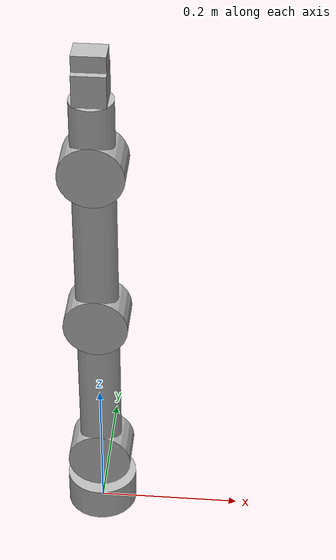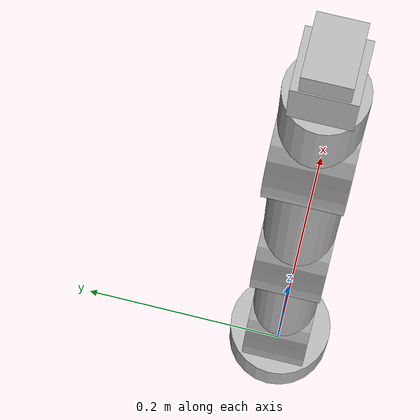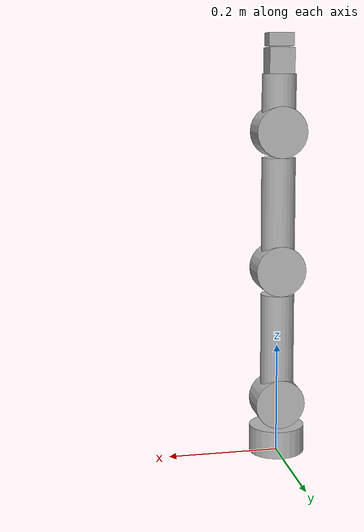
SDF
<?xml version='1.0'?>
<sdf version='1.6'>
  <model name='poke_arm'>
    <link name='poke_base_link'>
      <pose frame=''>0 0 0 0 -0 0</pose>
      <inertial>
        <pose frame=''>0 0 0.025 0 -0 0</pose>
        <mass>1</mass>
        <inertia>
          <ixx>0.00083333</ixx>
          <ixy>0</ixy>
          <ixz>0</ixz>
          <iyy>0.00083333</iyy>
          <iyz>0</iyz>
          <izz>0.00125</izz>
        </inertia>
      </inertial>
      <self_collide>0</self_collide>
      <enable_wind>0</enable_wind>
      <kinematic>0</kinematic>
      <gravity>1</gravity>
      <visual name='poke_base_link_fixed_joint_lump__baseMount_link_visual'>
        <pose frame=''>0 0 0.025 0 -0 0</pose>
        <geometry>
          <cylinder>
            <length>0.05</length>
            <radius>0.05</radius>
          </cylinder>
        </geometry>
        <material>
          <shader type='pixel'>
            <normal_map>__default__</normal_map>
          </shader>
        </material>
        <transparency>0</transparency>
        <cast_shadows>1</cast_shadows>
      </visual>
      <collision name='poke_base_link_fixed_joint_lump__baseMount_link_collision'>
        <laser_retro>0</laser_retro>
        <max_contacts>10</max_contacts>
        <pose frame=''>0 0 0.025 0 -0 0</pose>
        <geometry>
          <cylinder>
            <radius>0.05</radius>
            <length>0.05</length>
          </cylinder>
        </geometry>
        <surface>
          <friction>
            <ode>
              <mu>1</mu>
              <mu2>1</mu2>
              <fdir1>0 0 0</fdir1>
              <slip1>0</slip1>
              <slip2>0</slip2>
            </ode>
            <torsional>
              <coefficient>1</coefficient>
              <patch_radius>0</patch_radius>
              <surface_radius>0</surface_radius>
              <use_patch_radius>1</use_patch_radius>
              <ode>
                <slip>0</slip>
              </ode>
            </torsional>
          </friction>
          <bounce>
            <restitution_coefficient>0</restitution_coefficient>
            <threshold>1e+06</threshold>
          </bounce>
          <contact>
            <collide_without_contact>0</collide_without_contact>
            <collide_without_contact_bitmask>1</collide_without_contact_bitmask>
            <collide_bitmask>1</collide_bitmask>
            <ode>
              <soft_cfm>0</soft_cfm>
              <soft_erp>0.2</soft_erp>
              <kp>1e+13</kp>
              <kd>1</kd>
              <max_vel>0.01</max_vel>
              <min_depth>0</min_depth>
            </ode>
            <bullet>
              <split_impulse>1</split_impulse>
              <split_impulse_penetration_threshold>-0.01</split_impulse_penetration_threshold>
              <soft_cfm>0</soft_cfm>
              <soft_erp>0.2</soft_erp>
              <kp>1e+13</kp>
              <kd>1</kd>
            </bullet>
          </contact>
        </surface>
      </collision>
    </link>
    <link name='p0_link'>
      <pose frame=''>-0 0 0.095 0 -0 0</pose>
      <inertial>
        <pose frame=''>0 0 0.1 0 -0 0</pose>
        <mass>0.01</mass>
        <inertia>
          <ixx>0.0001</ixx>
          <ixy>0</ixy>
          <ixz>0</ixz>
          <iyy>0.0001</iyy>
          <iyz>0</iyz>
          <izz>0.0001</izz>
        </inertia>
      </inertial>
      <self_collide>0</self_collide>
      <enable_wind>0</enable_wind>
      <kinematic>0</kinematic>
      <visual name='p0_link_fixed_joint_lump__p0_joint_v_visual'>
        <pose frame=''>0 0 0 1.57079 -0 0</pose>
        <geometry>
          <cylinder>
            <length>0.06</length>
            <radius>0.045</radius>
          </cylinder>
        </geometry>
        <material>
          <shader type='pixel'/>
        </material>
        <transparency>0</transparency>
        <cast_shadows>1</cast_shadows>
      </visual>
      <visual name='p0_link_fixed_joint_lump__p0_segmentL_v_visual_1'>
        <pose frame=''>0 0 0.1 0 -0 0</pose>
        <geometry>
          <cylinder>
            <length>0.2</length>
            <radius>0.03</radius>
          </cylinder>
        </geometry>
        <material>
          <shader type='pixel'/>
        </material>
        <transparency>0</transparency>
        <cast_shadows>1</cast_shadows>
      </visual>
      <collision name='p0_link_fixed_joint_lump__p0_joint_c_collision'>
        <laser_retro>0</laser_retro>
        <max_contacts>10</max_contacts>
        <pose frame=''>0 0 0 1.57079 -0 0</pose>
        <geometry>
          <cylinder>
            <radius>0.045</radius>
            <length>0.06</length>
          </cylinder>
        </geometry>
        <surface>
          <friction>
            <ode>
              <mu>1</mu>
              <mu2>1</mu2>
              <fdir1>0 0 0</fdir1>
              <slip1>0</slip1>
              <slip2>0</slip2>
            </ode>
            <torsional>
              <coefficient>1</coefficient>
              <patch_radius>0</patch_radius>
              <surface_radius>0</surface_radius>
              <use_patch_radius>1</use_patch_radius>
              <ode>
                <slip>0</slip>
              </ode>
            </torsional>
          </friction>
          <bounce>
            <restitution_coefficient>0</restitution_coefficient>
            <threshold>1e+06</threshold>
          </bounce>
          <contact>
            <collide_without_contact>0</collide_without_contact>
            <collide_without_contact_bitmask>1</collide_without_contact_bitmask>
            <collide_bitmask>1</collide_bitmask>
            <ode>
              <soft_cfm>0</soft_cfm>
              <soft_erp>0.2</soft_erp>
              <kp>1e+13</kp>
              <kd>1</kd>
              <max_vel>0.01</max_vel>
              <min_depth>0</min_depth>
            </ode>
            <bullet>
              <split_impulse>1</split_impulse>
              <split_impulse_penetration_threshold>-0.01</split_impulse_penetration_threshold>
              <soft_cfm>0</soft_cfm>
              <soft_erp>0.2</soft_erp>
              <kp>1e+13</kp>
              <kd>1</kd>
            </bullet>
          </contact>
        </surface>
      </collision>
      <collision name='p0_link_fixed_joint_lump__p0_segmentL_c_collision_1'>
        <laser_retro>0</laser_retro>
        <max_contacts>10</max_contacts>
        <pose frame=''>0 0 0.1 0 -0 0</pose>
        <geometry>
          <cylinder>
            <radius>0.03</radius>
            <length>0.2</length>
          </cylinder>
        </geometry>
        <surface>
          <friction>
            <ode>
              <mu>1</mu>
              <mu2>1</mu2>
              <fdir1>0 0 0</fdir1>
              <slip1>0</slip1>
              <slip2>0</slip2>
            </ode>
            <torsional>
              <coefficient>1</coefficient>
              <patch_radius>0</patch_radius>
              <surface_radius>0</surface_radius>
              <use_patch_radius>1</use_patch_radius>
              <ode>
                <slip>0</slip>
              </ode>
            </torsional>
          </friction>
          <bounce>
            <restitution_coefficient>0</restitution_coefficient>
            <threshold>1e+06</threshold>
          </bounce>
          <contact>
            <collide_without_contact>0</collide_without_contact>
            <collide_without_contact_bitmask>1</collide_without_contact_bitmask>
            <collide_bitmask>1</collide_bitmask>
            <ode>
              <soft_cfm>0</soft_cfm>
              <soft_erp>0.2</soft_erp>
              <kp>1e+13</kp>
              <kd>1</kd>
              <max_vel>0.01</max_vel>
              <min_depth>0</min_depth>
            </ode>
            <bullet>
              <split_impulse>1</split_impulse>
              <split_impulse_penetration_threshold>-0.01</split_impulse_penetration_threshold>
              <soft_cfm>0</soft_cfm>
              <soft_erp>0.2</soft_erp>
              <kp>1e+13</kp>
              <kd>1</kd>
            </bullet>
          </contact>
        </surface>
      </collision>
    </link>
    <link name='p1_link'>
      <pose frame=''>-0 -0 0.34 0 -0 0</pose>
      <inertial>
        <pose frame=''>0 0 0.1 0 -0 0</pose>
        <mass>0.01</mass>
        <inertia>
          <ixx>0.0001</ixx>
          <ixy>0</ixy>
          <ixz>0</ixz>
          <iyy>0.0001</iyy>
          <iyz>0</iyz>
          <izz>0.0001</izz>
        </inertia>
      </inertial>
      <self_collide>0</self_collide>
      <enable_wind>0</enable_wind>
      <kinematic>0</kinematic>
      <visual name='p1_link_fixed_joint_lump__p1_joint_v_visual'>
        <pose frame=''>0 0 0 1.57079 -0 0</pose>
        <geometry>
          <cylinder>
            <length>0.06</length>
            <radius>0.045</radius>
          </cylinder>
        </geometry>
        <material>
          <shader type='pixel'/>
        </material>
        <transparency>0</transparency>
        <cast_shadows>1</cast_shadows>
      </visual>
      <visual name='p1_link_fixed_joint_lump__p1_segmentL_v_visual_1'>
        <pose frame=''>0 0 0.1 0 -0 0</pose>
        <geometry>
          <cylinder>
            <length>0.2</length>
            <radius>0.03</radius>
          </cylinder>
        </geometry>
        <material>
          <shader type='pixel'/>
        </material>
        <transparency>0</transparency>
        <cast_shadows>1</cast_shadows>
      </visual>
      <collision name='p1_link_fixed_joint_lump__p1_joint_c_collision'>
        <laser_retro>0</laser_retro>
        <max_contacts>10</max_contacts>
        <pose frame=''>0 0 0 1.57079 -0 0</pose>
        <geometry>
          <cylinder>
            <radius>0.045</radius>
            <length>0.06</length>
          </cylinder>
        </geometry>
        <surface>
          <friction>
            <ode>
              <mu>1</mu>
              <mu2>1</mu2>
              <fdir1>0 0 0</fdir1>
              <slip1>0</slip1>
              <slip2>0</slip2>
            </ode>
            <torsional>
              <coefficient>1</coefficient>
              <patch_radius>0</patch_radius>
              <surface_radius>0</surface_radius>
              <use_patch_radius>1</use_patch_radius>
              <ode>
                <slip>0</slip>
              </ode>
            </torsional>
          </friction>
          <bounce>
            <restitution_coefficient>0</restitution_coefficient>
            <threshold>1e+06</threshold>
          </bounce>
          <contact>
            <collide_without_contact>0</collide_without_contact>
            <collide_without_contact_bitmask>1</collide_without_contact_bitmask>
            <collide_bitmask>1</collide_bitmask>
            <ode>
              <soft_cfm>0</soft_cfm>
              <soft_erp>0.2</soft_erp>
              <kp>1e+13</kp>
              <kd>1</kd>
              <max_vel>0.01</max_vel>
              <min_depth>0</min_depth>
            </ode>
            <bullet>
              <split_impulse>1</split_impulse>
              <split_impulse_penetration_threshold>-0.01</split_impulse_penetration_threshold>
              <soft_cfm>0</soft_cfm>
              <soft_erp>0.2</soft_erp>
              <kp>1e+13</kp>
              <kd>1</kd>
            </bullet>
          </contact>
        </surface>
      </collision>
      <collision name='p1_link_fixed_joint_lump__p1_segmentL_c_collision_1'>
        <laser_retro>0</laser_retro>
        <max_contacts>10</max_contacts>
        <pose frame=''>0 0 0.1 0 -0 0</pose>
        <geometry>
          <cylinder>
            <radius>0.03</radius>
            <length>0.2</length>
          </cylinder>
        </geometry>
        <surface>
          <friction>
            <ode>
              <mu>1</mu>
              <mu2>1</mu2>
              <fdir1>0 0 0</fdir1>
              <slip1>0</slip1>
              <slip2>0</slip2>
            </ode>
            <torsional>
              <coefficient>1</coefficient>
              <patch_radius>0</patch_radius>
              <surface_radius>0</surface_radius>
              <use_patch_radius>1</use_patch_radius>
              <ode>
                <slip>0</slip>
              </ode>
            </torsional>
          </friction>
          <bounce>
            <restitution_coefficient>0</restitution_coefficient>
            <threshold>1e+06</threshold>
          </bounce>
          <contact>
            <collide_without_contact>0</collide_without_contact>
            <collide_without_contact_bitmask>1</collide_without_contact_bitmask>
            <collide_bitmask>1</collide_bitmask>
            <ode>
              <soft_cfm>0</soft_cfm>
              <soft_erp>0.2</soft_erp>
              <kp>1e+13</kp>
              <kd>1</kd>
              <max_vel>0.01</max_vel>
              <min_depth>0</min_depth>
            </ode>
            <bullet>
              <split_impulse>1</split_impulse>
              <split_impulse_penetration_threshold>-0.01</split_impulse_penetration_threshold>
              <soft_cfm>0</soft_cfm>
              <soft_erp>0.2</soft_erp>
              <kp>1e+13</kp>
              <kd>1</kd>
            </bullet>
          </contact>
        </surface>
      </collision>
    </link>
    <link name='p2_link'>
      <pose frame=''>-0 0 0.585 0 -0 0</pose>
      <inertial>
        <pose frame=''>0 0 0.05 0 -0 0</pose>
        <mass>0.01</mass>
        <inertia>
          <ixx>0.0001</ixx>
          <ixy>0</ixy>
          <ixz>0</ixz>
          <iyy>0.0001</iyy>
          <iyz>0</iyz>
          <izz>0.0001</izz>
        </inertia>
      </inertial>
      <self_collide>0</self_collide>
      <enable_wind>0</enable_wind>
      <kinematic>0</kinematic>
      <visual name='p2_link_fixed_joint_lump__p2_joint_v_visual'>
        <pose frame=''>0 0 0 1.57079 -0 0</pose>
        <geometry>
          <cylinder>
            <length>0.06</length>
            <radius>0.045</radius>
          </cylinder>
        </geometry>
        <material>
          <shader type='pixel'/>
        </material>
        <transparency>0</transparency>
        <cast_shadows>1</cast_shadows>
      </visual>
      <visual name='p2_link_fixed_joint_lump__p2_segmentS_v_visual_1'>
        <pose frame=''>0 0 0.05 0 -0 0</pose>
        <geometry>
          <cylinder>
            <length>0.1</length>
            <radius>0.03</radius>
          </cylinder>
        </geometry>
        <material>
          <shader type='pixel'/>
        </material>
        <transparency>0</transparency>
        <cast_shadows>1</cast_shadows>
      </visual>
      <collision name='p2_link_fixed_joint_lump__p2_joint_c_collision'>
        <laser_retro>0</laser_retro>
        <max_contacts>10</max_contacts>
        <pose frame=''>0 0 0 1.57079 -0 0</pose>
        <geometry>
          <cylinder>
            <radius>0.045</radius>
            <length>0.06</length>
          </cylinder>
        </geometry>
        <surface>
          <friction>
            <ode>
              <mu>1</mu>
              <mu2>1</mu2>
              <fdir1>0 0 0</fdir1>
              <slip1>0</slip1>
              <slip2>0</slip2>
            </ode>
            <torsional>
              <coefficient>1</coefficient>
              <patch_radius>0</patch_radius>
              <surface_radius>0</surface_radius>
              <use_patch_radius>1</use_patch_radius>
              <ode>
                <slip>0</slip>
              </ode>
            </torsional>
          </friction>
          <bounce>
            <restitution_coefficient>0</restitution_coefficient>
            <threshold>1e+06</threshold>
          </bounce>
          <contact>
            <collide_without_contact>0</collide_without_contact>
            <collide_without_contact_bitmask>1</collide_without_contact_bitmask>
            <collide_bitmask>1</collide_bitmask>
            <ode>
              <soft_cfm>0</soft_cfm>
              <soft_erp>0.2</soft_erp>
              <kp>1e+13</kp>
              <kd>1</kd>
              <max_vel>0.01</max_vel>
              <min_depth>0</min_depth>
            </ode>
            <bullet>
              <split_impulse>1</split_impulse>
              <split_impulse_penetration_threshold>-0.01</split_impulse_penetration_threshold>
              <soft_cfm>0</soft_cfm>
              <soft_erp>0.2</soft_erp>
              <kp>1e+13</kp>
              <kd>1</kd>
            </bullet>
          </contact>
        </surface>
      </collision>
      <collision name='p2_link_fixed_joint_lump__p2_segmentS_c_collision_1'>
        <laser_retro>0</laser_retro>
        <max_contacts>10</max_contacts>
        <pose frame=''>0 0 0.05 0 -0 0</pose>
        <geometry>
          <cylinder>
            <radius>0.03</radius>
            <length>0.1</length>
          </cylinder>
        </geometry>
        <surface>
          <friction>
            <ode>
              <mu>1</mu>
              <mu2>1</mu2>
              <fdir1>0 0 0</fdir1>
              <slip1>0</slip1>
              <slip2>0</slip2>
            </ode>
            <torsional>
              <coefficient>1</coefficient>
              <patch_radius>0</patch_radius>
              <surface_radius>0</surface_radius>
              <use_patch_radius>1</use_patch_radius>
              <ode>
                <slip>0</slip>
              </ode>
            </torsional>
          </friction>
          <bounce>
            <restitution_coefficient>0</restitution_coefficient>
            <threshold>1e+06</threshold>
          </bounce>
          <contact>
            <collide_without_contact>0</collide_without_contact>
            <collide_without_contact_bitmask>1</collide_without_contact_bitmask>
            <collide_bitmask>1</collide_bitmask>
            <ode>
              <soft_cfm>0</soft_cfm>
              <soft_erp>0.2</soft_erp>
              <kp>1e+13</kp>
              <kd>1</kd>
              <max_vel>0.01</max_vel>
              <min_depth>0</min_depth>
            </ode>
            <bullet>
              <split_impulse>1</split_impulse>
              <split_impulse_penetration_threshold>-0.01</split_impulse_penetration_threshold>
              <soft_cfm>0</soft_cfm>
              <soft_erp>0.2</soft_erp>
              <kp>1e+13</kp>
              <kd>1</kd>
            </bullet>
          </contact>
        </surface>
      </collision>
    </link>
    <link name='p3_link'>
      <pose frame=''>-0 0 0.7075 0 -0 0</pose>
      <inertial>
        <pose frame=''>0 0 0.018 0 -0 0</pose>
        <mass>0.021</mass>
        <inertia>
          <ixx>7.09e-06</ixx>
          <ixy>0</ixy>
          <ixz>0</ixz>
          <iyy>7.09e-06</iyy>
          <iyz>0</iyz>
          <izz>7.09e-06</izz>
        </inertia>
      </inertial>
      <gravity>1</gravity>
      <velocity_decay/>
      <self_collide>0</self_collide>
      <enable_wind>0</enable_wind>
      <kinematic>0</kinematic>
      <visual name='p3_link_fixed_joint_lump__p3_cSeg_v_visual'>
        <pose frame=''>0 0 0 0 -0 0</pose>
        <geometry>
          <box>
            <size>0.045 0.045 0.045</size>
          </box>
        </geometry>
        <transparency>0</transparency>
        <cast_shadows>1</cast_shadows>
        <material>
          <shader type='pixel'/>
        </material>
      </visual>
      <visual name='p3_link_fixed_joint_lump__cameraB_cam_visual_1'>
        <pose frame=''>0 0 0.036 3.14159 -1.57079 3.14159</pose>
        <geometry>
          <box>
            <size>0.0225 0.03375 0.045</size>
          </box>
        </geometry>
        <transparency>0</transparency>
        <cast_shadows>1</cast_shadows>
        <material>
          <shader type='pixel'/>
        </material>
      </visual>
      <collision name='p3_link_fixed_joint_lump__p3_cSeg_c_collision'>
        <laser_retro>0</laser_retro>
        <max_contacts>10</max_contacts>
        <pose frame=''>0 0 0 0 -0 0</pose>
        <geometry>
          <box>
            <size>0.045 0.045 0.045</size>
          </box>
        </geometry>
        <surface>
          <friction>
            <ode>
              <mu>1</mu>
              <mu2>1</mu2>
              <fdir1>0 0 0</fdir1>
              <slip1>0</slip1>
              <slip2>0</slip2>
            </ode>
            <torsional>
              <coefficient>1</coefficient>
              <patch_radius>0</patch_radius>
              <surface_radius>0</surface_radius>
              <use_patch_radius>1</use_patch_radius>
              <ode>
                <slip>0</slip>
              </ode>
            </torsional>
          </friction>
          <bounce>
            <restitution_coefficient>0</restitution_coefficient>
            <threshold>1e+06</threshold>
          </bounce>
          <contact>
            <collide_without_contact>0</collide_without_contact>
            <collide_without_contact_bitmask>1</collide_without_contact_bitmask>
            <collide_bitmask>1</collide_bitmask>
            <ode>
              <soft_cfm>0</soft_cfm>
              <soft_erp>0.2</soft_erp>
              <kp>1e+13</kp>
              <kd>1</kd>
              <max_vel>0.01</max_vel>
              <min_depth>0</min_depth>
            </ode>
            <bullet>
              <split_impulse>1</split_impulse>
              <split_impulse_penetration_threshold>-0.01</split_impulse_penetration_threshold>
              <soft_cfm>0</soft_cfm>
              <soft_erp>0.2</soft_erp>
              <kp>1e+13</kp>
              <kd>1</kd>
            </bullet>
          </contact>
        </surface>
      </collision>
      <collision name='p3_link_fixed_joint_lump__cameraB_cam_collision_1'>
        <laser_retro>0</laser_retro>
        <max_contacts>10</max_contacts>
        <pose frame=''>0 0 0.036 3.14159 -1.57079 3.14159</pose>
        <geometry>
          <box>
            <size>0.0225 0.03375 0.045</size>
          </box>
        </geometry>
        <surface>
          <friction>
            <ode>
              <mu>1</mu>
              <mu2>1</mu2>
              <fdir1>0 0 0</fdir1>
              <slip1>0</slip1>
              <slip2>0</slip2>
            </ode>
            <torsional>
              <coefficient>1</coefficient>
              <patch_radius>0</patch_radius>
              <surface_radius>0</surface_radius>
              <use_patch_radius>1</use_patch_radius>
              <ode>
                <slip>0</slip>
              </ode>
            </torsional>
          </friction>
          <bounce>
            <restitution_coefficient>0</restitution_coefficient>
            <threshold>1e+06</threshold>
          </bounce>
          <contact>
            <collide_without_contact>0</collide_without_contact>
            <collide_without_contact_bitmask>1</collide_without_contact_bitmask>
            <collide_bitmask>1</collide_bitmask>
            <ode>
              <soft_cfm>0</soft_cfm>
              <soft_erp>0.2</soft_erp>
              <kp>1e+13</kp>
              <kd>1</kd>
              <max_vel>0.01</max_vel>
              <min_depth>0</min_depth>
            </ode>
            <bullet>
              <split_impulse>1</split_impulse>
              <split_impulse_penetration_threshold>-0.01</split_impulse_penetration_threshold>
              <soft_cfm>0</soft_cfm>
              <soft_erp>0.2</soft_erp>
              <kp>1e+13</kp>
              <kd>1</kd>
            </bullet>
          </contact>
        </surface>
      </collision>
    </link>
    <joint name='p0_joint' type='revolute'>
      <parent>poke_base_link</parent>
      <child>p0_link</child>
      <pose frame=''>0 0 0 0 -0 0</pose>
      <axis>
        <xyz>0 1 0</xyz>
        <use_parent_model_frame>1</use_parent_model_frame>
        <limit>
          <lower>-1.0472</lower>
          <upper>1.50796</upper>
          <effort>30</effort>
          <velocity>5</velocity>
        </limit>
        <dynamics>
          <spring_reference>0</spring_reference>
          <spring_stiffness>0</spring_stiffness>
          <damping>0</damping>
          <friction>0</friction>
        </dynamics>
      </axis>
      <physics>
        <ode>
          <limit>
            <cfm>0</cfm>
            <erp>0.2</erp>
          </limit>
          <suspension>
            <cfm>0</cfm>
            <erp>0.2</erp>
          </suspension>
        </ode>
      </physics>
    </joint>
    <joint name='p1_joint' type='revolute'>
      <parent>p0_link</parent>
      <child>p1_link</child>
      <pose frame=''>0 0 0 0 -0 0</pose>
      <axis>
        <xyz>0 1 0</xyz>
        <use_parent_model_frame>1</use_parent_model_frame>
        <limit>
          <lower>0</lower>
          <upper>2.09439</upper>
          <effort>30</effort>
          <velocity>5</velocity>
        </limit>
        <dynamics>
          <spring_reference>0</spring_reference>
          <spring_stiffness>0</spring_stiffness>
          <damping>0</damping>
          <friction>0</friction>
        </dynamics>
      </axis>
      <physics>
        <ode>
          <limit>
            <cfm>0</cfm>
            <erp>0.2</erp>
          </limit>
          <suspension>
            <cfm>0</cfm>
            <erp>0.2</erp>
          </suspension>
        </ode>
      </physics>
    </joint>
    <joint name='p2_joint' type='revolute'>
      <parent>p1_link</parent>
      <child>p2_link</child>
      <pose frame=''>0 0 0 0 -0 0</pose>
      <axis>
        <xyz>0 1 0</xyz>
        <use_parent_model_frame>1</use_parent_model_frame>
        <limit>
          <lower>-2.09439</lower>
          <upper>2.09439</upper>
          <effort>30</effort>
          <velocity>5</velocity>
        </limit>
        <dynamics>
          <spring_reference>0</spring_reference>
          <spring_stiffness>0</spring_stiffness>
          <damping>0</damping>
          <friction>0</friction>
        </dynamics>
      </axis>
      <physics>
        <ode>
          <limit>
            <cfm>0</cfm>
            <erp>0.2</erp>
          </limit>
          <suspension>
            <cfm>0</cfm>
            <erp>0.2</erp>
          </suspension>
        </ode>
      </physics>
    </joint>
    <joint name='p3_joint' type='revolute'>
      <parent>p2_link</parent>
      <child>p3_link</child>
      <pose frame=''>0 0 0 0 -0 0</pose>
      <axis>
        <xyz>0 0 1</xyz>
        <use_parent_model_frame>1</use_parent_model_frame>
        <limit>
          <lower>-1e+16</lower>
          <upper>1e+16</upper>
          <effort>-1</effort>
          <velocity>-1</velocity>
        </limit>
        <dynamics>
          <spring_reference>0</spring_reference>
          <spring_stiffness>0</spring_stiffness>
          <damping>0</damping>
          <friction>0</friction>
        </dynamics>
      </axis>
      <physics>
        <ode>
          <limit>
            <cfm>0</cfm>
            <erp>0.2</erp>
          </limit>
          <suspension>
            <cfm>0</cfm>
            <erp>0.2</erp>
          </suspension>
        </ode>
      </physics>
    </joint>
    <static>0</static>
    <allow_auto_disable>1</allow_auto_disable>
  </model>
</sdf>
